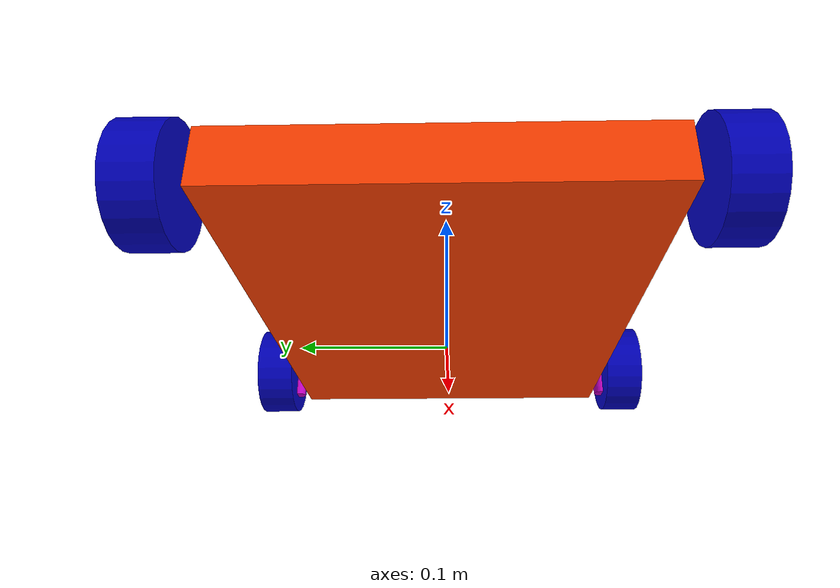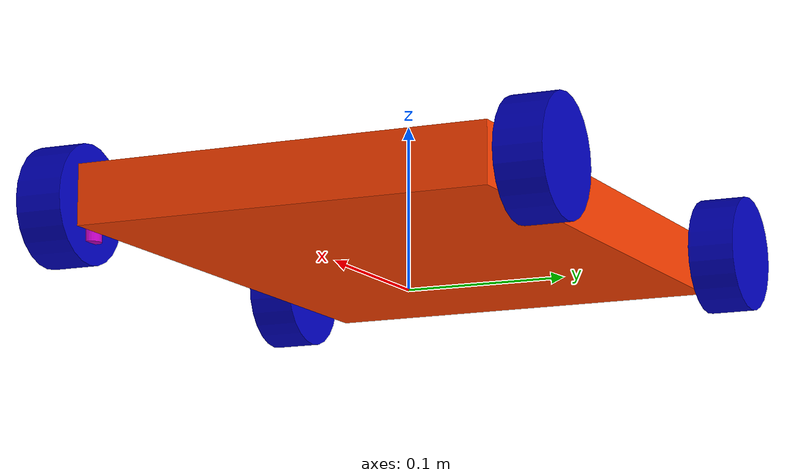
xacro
<?xml version="1.0"?>
<robot xmlns:xacro="http://www.ros.org/wiki/xacro">

    <xacro:include filename="$(find ackermann_vehicle_description)/urdf/common_properties.xacro" />

    <link name="base_footprint"/>

    <link name="chassis_link">
        <xacro:box_inertia m="1.875" l="0.347814" w="0.25299" h="0.036" o_xyz="0.0 0.0 0.0" o_rpy="0.0 0.0 0.0"/>

        <visual>
            <origin xyz="0.0 0.0 0.0" rpy="0.0 0.0 0.0"/>
            <geometry>
                <box size="0.347814 0.25299 0.036"/>
            </geometry>
            <material name="orange">
                <color rgba="1.0 0.25 0.0 1.0" />
            </material>
        </visual>
        <collision>
            <origin xyz="0.0 0.0 0.0" rpy="0.0 0.0 0.0"/>
            <geometry>
                <box size="0.347814 0.25299 0.036"/>
            </geometry>
        </collision>
    </link>

    <link name="right_front_wheel_link">
        <inertial>
            <origin xyz="0.0 0.0 0.0" rpy="1.57 0.0 0.0"/>
            <mass value="0.090"/>
            <inertia ixx="3.4573e-5" ixy="0.0" ixz="0.0" iyy="3.4573e-5" iyz="0.0" izz="5.7205e-5"/>
        </inertial>
        <visual>
            <origin xyz="0.0 0.0 0.0" rpy="1.57 0.0 0.0"/>
            <geometry>
                <cylinder radius="0.03556" length="0.028575"/>
            </geometry>
            <material name="blue">
                <color rgba="0.0 0.0 0.75 1.0" />
            </material>
        </visual>
        <collision>
            <origin xyz="0.0 0.0 0.0" rpy="1.57 0.0 0.0"/>
            <geometry>
                <cylinder radius="0.03556" length="0.028575"/>
            </geometry>
        </collision>

    </link>

    <link name="left_front_wheel_link">
        <inertial>
            <origin xyz="0.0 0.0 0.0" rpy="1.57 0.0 0.0"/>
            <mass value="0.090"/>
            <inertia ixx="3.4573e-5" ixy="0.0" ixz="0.0" iyy="3.4573e-5" iyz="0.0" izz="5.7205e-5"/>
        </inertial>
        <visual>
            <origin xyz="0.0 0.0 0.0" rpy="1.57 0.0 0.0"/>
            <geometry>
                <cylinder radius="0.03556" length="0.028575"/>
            </geometry>
            <material name="blue">
                <color rgba="0.0 0.0 0.75 1.0" />
            </material>
        </visual>
        <collision>
            <origin xyz="0.0 0.0 0.0" rpy="1.57 0.0 0.0"/>
            <geometry>
                <cylinder radius="0.03556" length="0.028575"/>
            </geometry>
        </collision>
    </link>

    <link name="right_rear_wheel_link">
        <inertial>
            <origin xyz="0.0 0.0 0.0" rpy="1.57 0.0 0.0"/>
            <mass value="0.090"/>
            <inertia ixx="3.4573e-5" ixy="0.0" ixz="0.0" iyy="3.4573e-5" iyz="0.0" izz="5.7205e-5"/>
        </inertial>
        <visual>
            <origin xyz="0.0 0.0 0.0" rpy="1.57 0.0 0.0"/>
            <geometry>
                <cylinder radius="0.03556" length="0.028575"/>
            </geometry>
            <material name="blue">
                <color rgba="0.0 0.0 0.75 1.0" />
            </material>
        </visual>
        <collision>
            <origin xyz="0.0 0.0 0.0" rpy="1.57 0.0 0.0"/>
            <geometry>
                <cylinder radius="0.03556" length="0.028575"/>
            </geometry>
        </collision>
    </link>
    <link name="left_rear_wheel_link">
        <inertial>
            <origin xyz="0.0 0.0 0.0" rpy="1.57 0.0 0.0"/>
            <mass value="0.090"/>
            <inertia ixx="3.4573e-5" ixy="0.0" ixz="0.0" iyy="3.4573e-5" iyz="0.0" izz="5.7205e-5"/>
        </inertial>
        <visual>
            <origin xyz="0.0 0.0 0.0" rpy="1.57 0.0 0.0"/>
            <geometry>
                <cylinder radius="0.03556" length="0.028575"/>
            </geometry>
            <material name="blue">
                <color rgba="0.0 0.0 0.75 1.0" />
            </material>
        </visual>
        <collision>
            <origin xyz="0.0 0.0 0.0" rpy="1.57 0.0 0.0"/>
            <geometry>
                <cylinder radius="0.03556" length="0.028575"/>
            </geometry>
        </collision>
    </link>
    <link name="right_steering_link">
        <inertial>
            <origin xyz="0.0 0.0 0.0" rpy="0.0 0.0 0.0"/>
            <mass value="0.013333"/>
            <inertia ixx="2.358e-6" ixy="0.0" ixz="0.0" iyy="2.358e-6" iyz="0.0" izz="2.17e-7"/>
        </inertial>
        <visual>
            <origin xyz="0.0 0.0 0.0" rpy="0.0 0.0 0.0"/>
            <geometry>
                <cylinder radius="0.005715" length="0.045"/>
            </geometry>
            <material name="purple">
                <color rgba="0.75 0.0 0.75 1.0" />
            </material>
        </visual>
        <collision>
            <origin xyz="0.0 0.0 0.0" rpy="0.0 0.0 0.0"/>
            <geometry>
                <cylinder radius="0.005715" length="0.045"/>
            </geometry>
        </collision>
    </link>
    <link name="left_steering_link">
        <inertial>
            <origin xyz="0.0 0.0 0.0" rpy="0.0 0.0 0.0"/>
            <mass value="0.013333"/>
            <inertia ixx="2.358e-6" ixy="0.0" ixz="0.0" iyy="2.358e-6" iyz="0.0" izz="2.17e-7"/>
        </inertial>
        <visual>
            <origin xyz="0.0 0.0 0.0" rpy="0.0 0.0 0.0"/>
            <geometry>
                <cylinder radius="0.005715" length="0.045"/>
            </geometry>
            <material name="purple">
                <color rgba="0.75 0.0 0.75 1.0" />
            </material>
        </visual>
        <collision>
            <origin xyz="0.0 0.0 0.0" rpy="0.0 0.0 0.0"/>
            <geometry>
                <cylinder radius="0.005715" length="0.045"/>
            </geometry>
        </collision>
    </link>

    <joint name="base_joint" type="fixed">
        <parent link="base_footprint"/>
        <child link="chassis_link"/>
        <origin xyz="0.0 0.0 0.03546" rpy="0.0 0.0 0.0"/>
    </joint>

    <joint name="right_front_wheel_joint" type="continuous">
        <parent link="right_steering_link"/>
        <child link="right_front_wheel_link"/>
        <axis xyz="0 1 0"/>
        <origin xyz="0.0 -0.01529 0" rpy="0 0 0"/>
    </joint>

    <joint name="left_front_wheel_joint" type="continuous">
        <parent link="left_steering_link"/>
        <child link="left_front_wheel_link"/>
        <axis xyz="0 1 0"/>
        <origin xyz="0.0 0.01529 0" rpy="0 0 0"/>
    </joint>
    <joint name="right_rear_wheel_joint" type="continuous">
        <parent link="chassis_link"/>
        <child link="right_rear_wheel_link"/>
        <axis xyz="0 1 0"/>
        <origin xyz="-0.1475 -0.1522125 0" rpy="0 0 0"/>
    </joint>
    <joint name="left_rear_wheel_joint" type="continuous">
        <parent link="chassis_link"/>
        <child link="left_rear_wheel_link"/>
        <axis xyz="0 1 0"/>
        <origin xyz="-0.1475 0.1522125 0" rpy="0 0 0"/>
    </joint>

    <joint name="right_steering_joint" type="revolute">
        <parent link="chassis_link"/>
        <child link="right_steering_link"/>
        <axis xyz="0 0 1"/>
        <limit lower="-0.3" upper="0.3" velocity="50.0" effort="1000.0"/>
        <origin xyz="0.1475 -0.13221 0" rpy="0 0 0"/>
    </joint>

    <joint name="left_steering_joint" type="revolute">
        <parent link="chassis_link"/>
        <child link="left_steering_link"/>
        <axis xyz="0 0 1"/>
        <limit lower="-0.3" upper="0.3" velocity="50.0" effort="1000.0"/>
        <origin xyz="0.1475 0.13221 0" rpy="0 0 0"/>
    </joint>

</robot>

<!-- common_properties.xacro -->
<robot xmlns:xacro="http://www.ros.org/wiki/xacro">
    <xacro:macro name="box_inertia" params="m l w h o_xyz o_rpy">
        <inertial>
            <origin xyz="${o_xyz}" rpy="${o_rpy}"/>
            <mass value="${m}"/>
            <inertia ixx="${1/12 * m * (w*w + h*h)}" ixy="0.0" ixz="0.0"
                     iyy="${1/12 * m * (l*l + h*h)}" iyz="0.0"
                     izz="${1/12 * m * (l*l + w*w)}"/>
        </inertial>
    </xacro:macro>
</robot>
